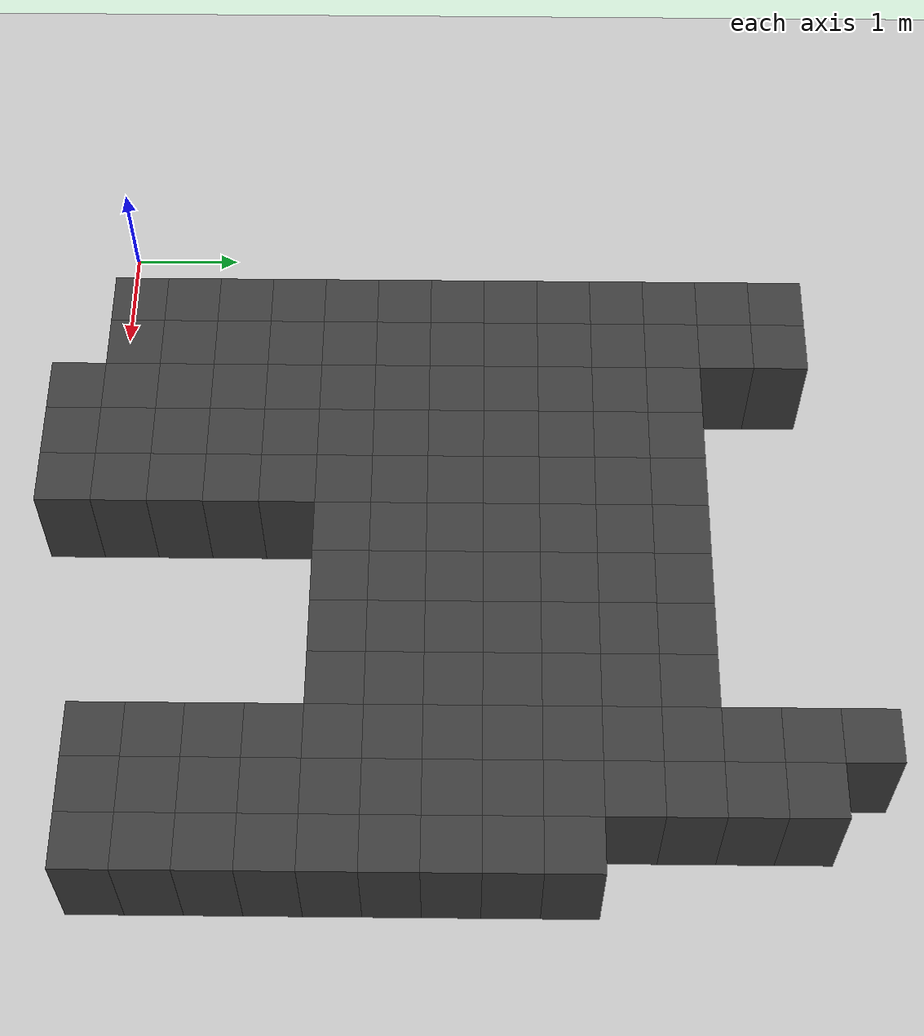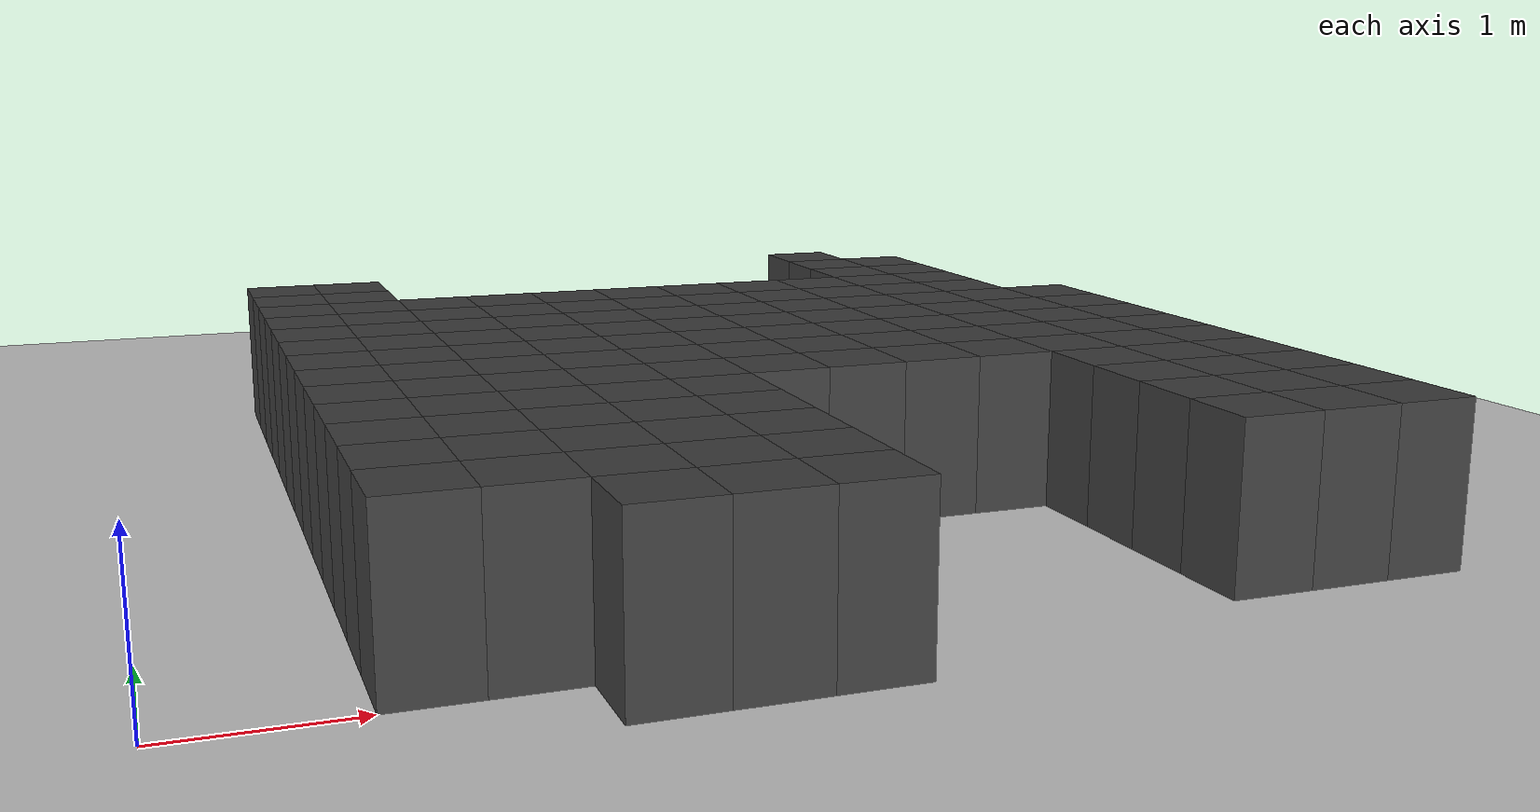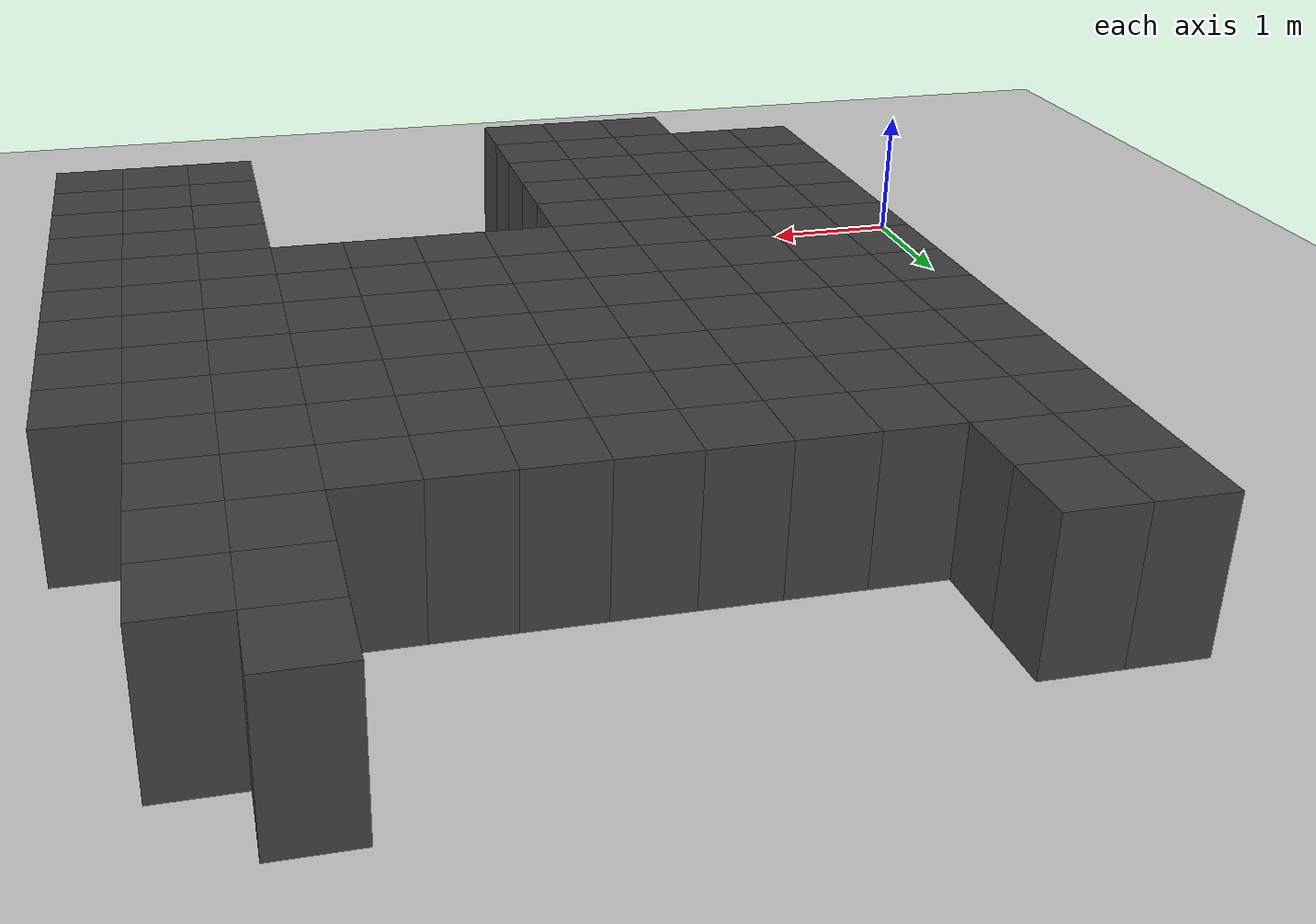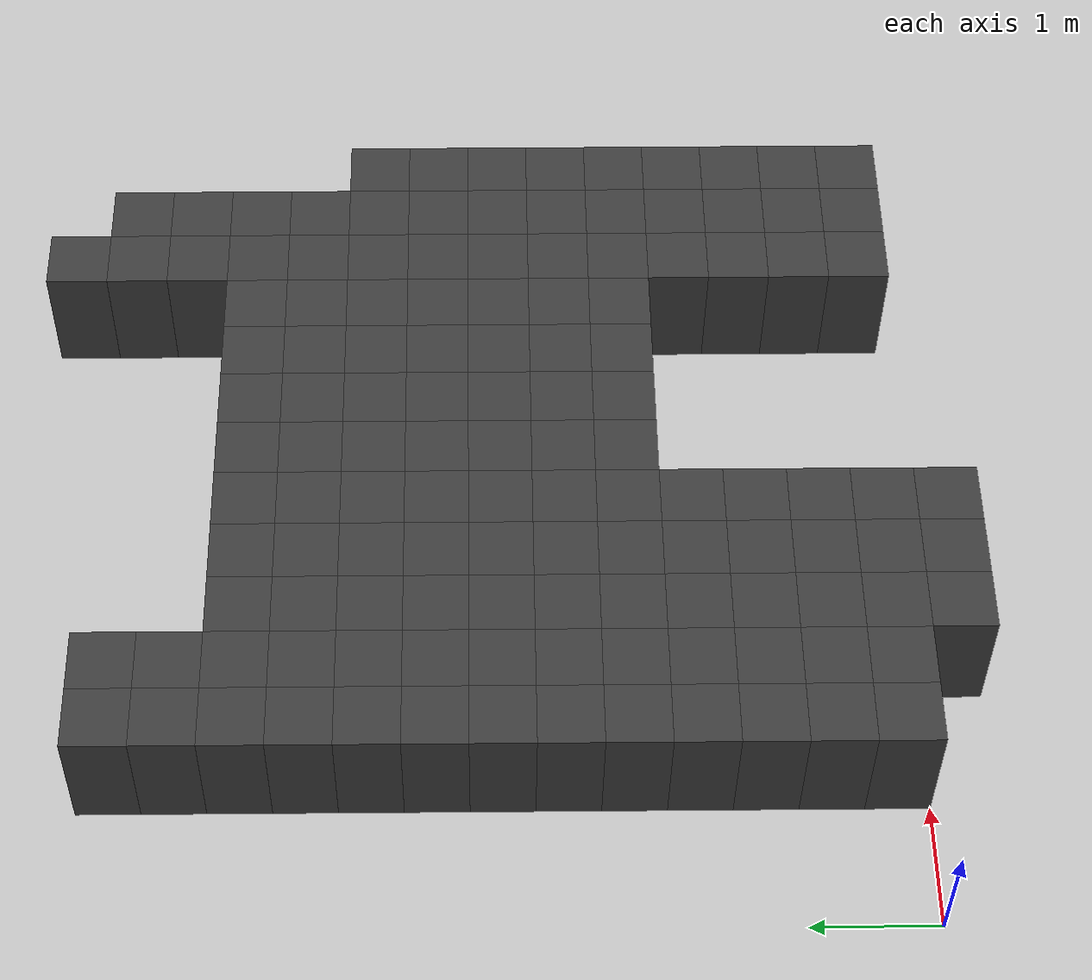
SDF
<sdf version="1.7">
 <world name="map_14495">
  <model name="ground_plane">
   <static>true</static>
   <link name="link">
    <collision name="collision">
     <geometry><plane><normal>0 0 1</normal><size>200 200</size></plane></geometry>
    </collision>
    <visual name="visual">
     <geometry><plane><normal>0 0 1</normal><size>200 200</size></plane></geometry>
     <material><ambient>0.8 0.8 0.8 1</ambient><diffuse>0.8 0.8 0.8 1</diffuse></material>
    </visual>
   </link>
  </model>
  <model name="maze_environment">
   <static>true</static>
   <link name="wall_455">
    <pose>5.750 6.750 0.500 0 0 0</pose>
    <collision name="col"><geometry><box><size>0.5 0.5 1.0</size></box></geometry></collision>
    <visual name="vis">
     <geometry><box><size>0.5 0.5 1.0</size></box></geometry>
     <material><ambient>0.15 0.15 0.15 1</ambient><diffuse>0.25 0.25 0.25 1</diffuse></material>
    </visual>
   </link>
   <link name="wall_483">
    <pose>1.250 6.250 0.500 0 0 0</pose>
    <collision name="col"><geometry><box><size>0.5 0.5 1.0</size></box></geometry></collision>
    <visual name="vis">
     <geometry><box><size>0.5 0.5 1.0</size></box></geometry>
     <material><ambient>0.15 0.15 0.15 1</ambient><diffuse>0.25 0.25 0.25 1</diffuse></material>
    </visual>
   </link>
   <link name="wall_484">
    <pose>1.750 6.250 0.500 0 0 0</pose>
    <collision name="col"><geometry><box><size>0.5 0.5 1.0</size></box></geometry></collision>
    <visual name="vis">
     <geometry><box><size>0.5 0.5 1.0</size></box></geometry>
     <material><ambient>0.15 0.15 0.15 1</ambient><diffuse>0.25 0.25 0.25 1</diffuse></material>
    </visual>
   </link>
   <link name="wall_485">
    <pose>5.750 6.250 0.500 0 0 0</pose>
    <collision name="col"><geometry><box><size>0.5 0.5 1.0</size></box></geometry></collision>
    <visual name="vis">
     <geometry><box><size>0.5 0.5 1.0</size></box></geometry>
     <material><ambient>0.15 0.15 0.15 1</ambient><diffuse>0.25 0.25 0.25 1</diffuse></material>
    </visual>
   </link>
   <link name="wall_486">
    <pose>6.250 6.250 0.500 0 0 0</pose>
    <collision name="col"><geometry><box><size>0.5 0.5 1.0</size></box></geometry></collision>
    <visual name="vis">
     <geometry><box><size>0.5 0.5 1.0</size></box></geometry>
     <material><ambient>0.15 0.15 0.15 1</ambient><diffuse>0.25 0.25 0.25 1</diffuse></material>
    </visual>
   </link>
   <link name="wall_513">
    <pose>1.250 5.750 0.500 0 0 0</pose>
    <collision name="col"><geometry><box><size>0.5 0.5 1.0</size></box></geometry></collision>
    <visual name="vis">
     <geometry><box><size>0.5 0.5 1.0</size></box></geometry>
     <material><ambient>0.15 0.15 0.15 1</ambient><diffuse>0.25 0.25 0.25 1</diffuse></material>
    </visual>
   </link>
   <link name="wall_514">
    <pose>1.750 5.750 0.500 0 0 0</pose>
    <collision name="col"><geometry><box><size>0.5 0.5 1.0</size></box></geometry></collision>
    <visual name="vis">
     <geometry><box><size>0.5 0.5 1.0</size></box></geometry>
     <material><ambient>0.15 0.15 0.15 1</ambient><diffuse>0.25 0.25 0.25 1</diffuse></material>
    </visual>
   </link>
   <link name="wall_515">
    <pose>5.750 5.750 0.500 0 0 0</pose>
    <collision name="col"><geometry><box><size>0.5 0.5 1.0</size></box></geometry></collision>
    <visual name="vis">
     <geometry><box><size>0.5 0.5 1.0</size></box></geometry>
     <material><ambient>0.15 0.15 0.15 1</ambient><diffuse>0.25 0.25 0.25 1</diffuse></material>
    </visual>
   </link>
   <link name="wall_516">
    <pose>6.250 5.750 0.500 0 0 0</pose>
    <collision name="col"><geometry><box><size>0.5 0.5 1.0</size></box></geometry></collision>
    <visual name="vis">
     <geometry><box><size>0.5 0.5 1.0</size></box></geometry>
     <material><ambient>0.15 0.15 0.15 1</ambient><diffuse>0.25 0.25 0.25 1</diffuse></material>
    </visual>
   </link>
   <link name="wall_542">
    <pose>1.250 5.250 0.500 0 0 0</pose>
    <collision name="col"><geometry><box><size>0.5 0.5 1.0</size></box></geometry></collision>
    <visual name="vis">
     <geometry><box><size>0.5 0.5 1.0</size></box></geometry>
     <material><ambient>0.15 0.15 0.15 1</ambient><diffuse>0.25 0.25 0.25 1</diffuse></material>
    </visual>
   </link>
   <link name="wall_543">
    <pose>1.750 5.250 0.500 0 0 0</pose>
    <collision name="col"><geometry><box><size>0.5 0.5 1.0</size></box></geometry></collision>
    <visual name="vis">
     <geometry><box><size>0.5 0.5 1.0</size></box></geometry>
     <material><ambient>0.15 0.15 0.15 1</ambient><diffuse>0.25 0.25 0.25 1</diffuse></material>
    </visual>
   </link>
   <link name="wall_544">
    <pose>2.250 5.250 0.500 0 0 0</pose>
    <collision name="col"><geometry><box><size>0.5 0.5 1.0</size></box></geometry></collision>
    <visual name="vis">
     <geometry><box><size>0.5 0.5 1.0</size></box></geometry>
     <material><ambient>0.15 0.15 0.15 1</ambient><diffuse>0.25 0.25 0.25 1</diffuse></material>
    </visual>
   </link>
   <link name="wall_545">
    <pose>2.750 5.250 0.500 0 0 0</pose>
    <collision name="col"><geometry><box><size>0.5 0.5 1.0</size></box></geometry></collision>
    <visual name="vis">
     <geometry><box><size>0.5 0.5 1.0</size></box></geometry>
     <material><ambient>0.15 0.15 0.15 1</ambient><diffuse>0.25 0.25 0.25 1</diffuse></material>
    </visual>
   </link>
   <link name="wall_546">
    <pose>3.250 5.250 0.500 0 0 0</pose>
    <collision name="col"><geometry><box><size>0.5 0.5 1.0</size></box></geometry></collision>
    <visual name="vis">
     <geometry><box><size>0.5 0.5 1.0</size></box></geometry>
     <material><ambient>0.15 0.15 0.15 1</ambient><diffuse>0.25 0.25 0.25 1</diffuse></material>
    </visual>
   </link>
   <link name="wall_547">
    <pose>3.750 5.250 0.500 0 0 0</pose>
    <collision name="col"><geometry><box><size>0.5 0.5 1.0</size></box></geometry></collision>
    <visual name="vis">
     <geometry><box><size>0.5 0.5 1.0</size></box></geometry>
     <material><ambient>0.15 0.15 0.15 1</ambient><diffuse>0.25 0.25 0.25 1</diffuse></material>
    </visual>
   </link>
   <link name="wall_548">
    <pose>4.250 5.250 0.500 0 0 0</pose>
    <collision name="col"><geometry><box><size>0.5 0.5 1.0</size></box></geometry></collision>
    <visual name="vis">
     <geometry><box><size>0.5 0.5 1.0</size></box></geometry>
     <material><ambient>0.15 0.15 0.15 1</ambient><diffuse>0.25 0.25 0.25 1</diffuse></material>
    </visual>
   </link>
   <link name="wall_549">
    <pose>4.750 5.250 0.500 0 0 0</pose>
    <collision name="col"><geometry><box><size>0.5 0.5 1.0</size></box></geometry></collision>
    <visual name="vis">
     <geometry><box><size>0.5 0.5 1.0</size></box></geometry>
     <material><ambient>0.15 0.15 0.15 1</ambient><diffuse>0.25 0.25 0.25 1</diffuse></material>
    </visual>
   </link>
   <link name="wall_550">
    <pose>5.250 5.250 0.500 0 0 0</pose>
    <collision name="col"><geometry><box><size>0.5 0.5 1.0</size></box></geometry></collision>
    <visual name="vis">
     <geometry><box><size>0.5 0.5 1.0</size></box></geometry>
     <material><ambient>0.15 0.15 0.15 1</ambient><diffuse>0.25 0.25 0.25 1</diffuse></material>
    </visual>
   </link>
   <link name="wall_551">
    <pose>5.750 5.250 0.500 0 0 0</pose>
    <collision name="col"><geometry><box><size>0.5 0.5 1.0</size></box></geometry></collision>
    <visual name="vis">
     <geometry><box><size>0.5 0.5 1.0</size></box></geometry>
     <material><ambient>0.15 0.15 0.15 1</ambient><diffuse>0.25 0.25 0.25 1</diffuse></material>
    </visual>
   </link>
   <link name="wall_552">
    <pose>6.250 5.250 0.500 0 0 0</pose>
    <collision name="col"><geometry><box><size>0.5 0.5 1.0</size></box></geometry></collision>
    <visual name="vis">
     <geometry><box><size>0.5 0.5 1.0</size></box></geometry>
     <material><ambient>0.15 0.15 0.15 1</ambient><diffuse>0.25 0.25 0.25 1</diffuse></material>
    </visual>
   </link>
   <link name="wall_575">
    <pose>1.250 4.750 0.500 0 0 0</pose>
    <collision name="col"><geometry><box><size>0.5 0.5 1.0</size></box></geometry></collision>
    <visual name="vis">
     <geometry><box><size>0.5 0.5 1.0</size></box></geometry>
     <material><ambient>0.15 0.15 0.15 1</ambient><diffuse>0.25 0.25 0.25 1</diffuse></material>
    </visual>
   </link>
   <link name="wall_576">
    <pose>1.750 4.750 0.500 0 0 0</pose>
    <collision name="col"><geometry><box><size>0.5 0.5 1.0</size></box></geometry></collision>
    <visual name="vis">
     <geometry><box><size>0.5 0.5 1.0</size></box></geometry>
     <material><ambient>0.15 0.15 0.15 1</ambient><diffuse>0.25 0.25 0.25 1</diffuse></material>
    </visual>
   </link>
   <link name="wall_577">
    <pose>2.250 4.750 0.500 0 0 0</pose>
    <collision name="col"><geometry><box><size>0.5 0.5 1.0</size></box></geometry></collision>
    <visual name="vis">
     <geometry><box><size>0.5 0.5 1.0</size></box></geometry>
     <material><ambient>0.15 0.15 0.15 1</ambient><diffuse>0.25 0.25 0.25 1</diffuse></material>
    </visual>
   </link>
   <link name="wall_578">
    <pose>2.750 4.750 0.500 0 0 0</pose>
    <collision name="col"><geometry><box><size>0.5 0.5 1.0</size></box></geometry></collision>
    <visual name="vis">
     <geometry><box><size>0.5 0.5 1.0</size></box></geometry>
     <material><ambient>0.15 0.15 0.15 1</ambient><diffuse>0.25 0.25 0.25 1</diffuse></material>
    </visual>
   </link>
   <link name="wall_579">
    <pose>3.250 4.750 0.500 0 0 0</pose>
    <collision name="col"><geometry><box><size>0.5 0.5 1.0</size></box></geometry></collision>
    <visual name="vis">
     <geometry><box><size>0.5 0.5 1.0</size></box></geometry>
     <material><ambient>0.15 0.15 0.15 1</ambient><diffuse>0.25 0.25 0.25 1</diffuse></material>
    </visual>
   </link>
   <link name="wall_580">
    <pose>3.750 4.750 0.500 0 0 0</pose>
    <collision name="col"><geometry><box><size>0.5 0.5 1.0</size></box></geometry></collision>
    <visual name="vis">
     <geometry><box><size>0.5 0.5 1.0</size></box></geometry>
     <material><ambient>0.15 0.15 0.15 1</ambient><diffuse>0.25 0.25 0.25 1</diffuse></material>
    </visual>
   </link>
   <link name="wall_581">
    <pose>4.250 4.750 0.500 0 0 0</pose>
    <collision name="col"><geometry><box><size>0.5 0.5 1.0</size></box></geometry></collision>
    <visual name="vis">
     <geometry><box><size>0.5 0.5 1.0</size></box></geometry>
     <material><ambient>0.15 0.15 0.15 1</ambient><diffuse>0.25 0.25 0.25 1</diffuse></material>
    </visual>
   </link>
   <link name="wall_582">
    <pose>4.750 4.750 0.500 0 0 0</pose>
    <collision name="col"><geometry><box><size>0.5 0.5 1.0</size></box></geometry></collision>
    <visual name="vis">
     <geometry><box><size>0.5 0.5 1.0</size></box></geometry>
     <material><ambient>0.15 0.15 0.15 1</ambient><diffuse>0.25 0.25 0.25 1</diffuse></material>
    </visual>
   </link>
   <link name="wall_583">
    <pose>5.250 4.750 0.500 0 0 0</pose>
    <collision name="col"><geometry><box><size>0.5 0.5 1.0</size></box></geometry></collision>
    <visual name="vis">
     <geometry><box><size>0.5 0.5 1.0</size></box></geometry>
     <material><ambient>0.15 0.15 0.15 1</ambient><diffuse>0.25 0.25 0.25 1</diffuse></material>
    </visual>
   </link>
   <link name="wall_584">
    <pose>5.750 4.750 0.500 0 0 0</pose>
    <collision name="col"><geometry><box><size>0.5 0.5 1.0</size></box></geometry></collision>
    <visual name="vis">
     <geometry><box><size>0.5 0.5 1.0</size></box></geometry>
     <material><ambient>0.15 0.15 0.15 1</ambient><diffuse>0.25 0.25 0.25 1</diffuse></material>
    </visual>
   </link>
   <link name="wall_585">
    <pose>6.250 4.750 0.500 0 0 0</pose>
    <collision name="col"><geometry><box><size>0.5 0.5 1.0</size></box></geometry></collision>
    <visual name="vis">
     <geometry><box><size>0.5 0.5 1.0</size></box></geometry>
     <material><ambient>0.15 0.15 0.15 1</ambient><diffuse>0.25 0.25 0.25 1</diffuse></material>
    </visual>
   </link>
   <link name="wall_611">
    <pose>1.250 4.250 0.500 0 0 0</pose>
    <collision name="col"><geometry><box><size>0.5 0.5 1.0</size></box></geometry></collision>
    <visual name="vis">
     <geometry><box><size>0.5 0.5 1.0</size></box></geometry>
     <material><ambient>0.15 0.15 0.15 1</ambient><diffuse>0.25 0.25 0.25 1</diffuse></material>
    </visual>
   </link>
   <link name="wall_612">
    <pose>1.750 4.250 0.500 0 0 0</pose>
    <collision name="col"><geometry><box><size>0.5 0.5 1.0</size></box></geometry></collision>
    <visual name="vis">
     <geometry><box><size>0.5 0.5 1.0</size></box></geometry>
     <material><ambient>0.15 0.15 0.15 1</ambient><diffuse>0.25 0.25 0.25 1</diffuse></material>
    </visual>
   </link>
   <link name="wall_613">
    <pose>2.250 4.250 0.500 0 0 0</pose>
    <collision name="col"><geometry><box><size>0.5 0.5 1.0</size></box></geometry></collision>
    <visual name="vis">
     <geometry><box><size>0.5 0.5 1.0</size></box></geometry>
     <material><ambient>0.15 0.15 0.15 1</ambient><diffuse>0.25 0.25 0.25 1</diffuse></material>
    </visual>
   </link>
   <link name="wall_614">
    <pose>2.750 4.250 0.500 0 0 0</pose>
    <collision name="col"><geometry><box><size>0.5 0.5 1.0</size></box></geometry></collision>
    <visual name="vis">
     <geometry><box><size>0.5 0.5 1.0</size></box></geometry>
     <material><ambient>0.15 0.15 0.15 1</ambient><diffuse>0.25 0.25 0.25 1</diffuse></material>
    </visual>
   </link>
   <link name="wall_615">
    <pose>3.250 4.250 0.500 0 0 0</pose>
    <collision name="col"><geometry><box><size>0.5 0.5 1.0</size></box></geometry></collision>
    <visual name="vis">
     <geometry><box><size>0.5 0.5 1.0</size></box></geometry>
     <material><ambient>0.15 0.15 0.15 1</ambient><diffuse>0.25 0.25 0.25 1</diffuse></material>
    </visual>
   </link>
   <link name="wall_616">
    <pose>3.750 4.250 0.500 0 0 0</pose>
    <collision name="col"><geometry><box><size>0.5 0.5 1.0</size></box></geometry></collision>
    <visual name="vis">
     <geometry><box><size>0.5 0.5 1.0</size></box></geometry>
     <material><ambient>0.15 0.15 0.15 1</ambient><diffuse>0.25 0.25 0.25 1</diffuse></material>
    </visual>
   </link>
   <link name="wall_617">
    <pose>4.250 4.250 0.500 0 0 0</pose>
    <collision name="col"><geometry><box><size>0.5 0.5 1.0</size></box></geometry></collision>
    <visual name="vis">
     <geometry><box><size>0.5 0.5 1.0</size></box></geometry>
     <material><ambient>0.15 0.15 0.15 1</ambient><diffuse>0.25 0.25 0.25 1</diffuse></material>
    </visual>
   </link>
   <link name="wall_618">
    <pose>4.750 4.250 0.500 0 0 0</pose>
    <collision name="col"><geometry><box><size>0.5 0.5 1.0</size></box></geometry></collision>
    <visual name="vis">
     <geometry><box><size>0.5 0.5 1.0</size></box></geometry>
     <material><ambient>0.15 0.15 0.15 1</ambient><diffuse>0.25 0.25 0.25 1</diffuse></material>
    </visual>
   </link>
   <link name="wall_619">
    <pose>5.250 4.250 0.500 0 0 0</pose>
    <collision name="col"><geometry><box><size>0.5 0.5 1.0</size></box></geometry></collision>
    <visual name="vis">
     <geometry><box><size>0.5 0.5 1.0</size></box></geometry>
     <material><ambient>0.15 0.15 0.15 1</ambient><diffuse>0.25 0.25 0.25 1</diffuse></material>
    </visual>
   </link>
   <link name="wall_620">
    <pose>5.750 4.250 0.500 0 0 0</pose>
    <collision name="col"><geometry><box><size>0.5 0.5 1.0</size></box></geometry></collision>
    <visual name="vis">
     <geometry><box><size>0.5 0.5 1.0</size></box></geometry>
     <material><ambient>0.15 0.15 0.15 1</ambient><diffuse>0.25 0.25 0.25 1</diffuse></material>
    </visual>
   </link>
   <link name="wall_621">
    <pose>6.250 4.250 0.500 0 0 0</pose>
    <collision name="col"><geometry><box><size>0.5 0.5 1.0</size></box></geometry></collision>
    <visual name="vis">
     <geometry><box><size>0.5 0.5 1.0</size></box></geometry>
     <material><ambient>0.15 0.15 0.15 1</ambient><diffuse>0.25 0.25 0.25 1</diffuse></material>
    </visual>
   </link>
   <link name="wall_622">
    <pose>6.750 4.250 0.500 0 0 0</pose>
    <collision name="col"><geometry><box><size>0.5 0.5 1.0</size></box></geometry></collision>
    <visual name="vis">
     <geometry><box><size>0.5 0.5 1.0</size></box></geometry>
     <material><ambient>0.15 0.15 0.15 1</ambient><diffuse>0.25 0.25 0.25 1</diffuse></material>
    </visual>
   </link>
   <link name="wall_648">
    <pose>1.250 3.750 0.500 0 0 0</pose>
    <collision name="col"><geometry><box><size>0.5 0.5 1.0</size></box></geometry></collision>
    <visual name="vis">
     <geometry><box><size>0.5 0.5 1.0</size></box></geometry>
     <material><ambient>0.15 0.15 0.15 1</ambient><diffuse>0.25 0.25 0.25 1</diffuse></material>
    </visual>
   </link>
   <link name="wall_649">
    <pose>1.750 3.750 0.500 0 0 0</pose>
    <collision name="col"><geometry><box><size>0.5 0.5 1.0</size></box></geometry></collision>
    <visual name="vis">
     <geometry><box><size>0.5 0.5 1.0</size></box></geometry>
     <material><ambient>0.15 0.15 0.15 1</ambient><diffuse>0.25 0.25 0.25 1</diffuse></material>
    </visual>
   </link>
   <link name="wall_650">
    <pose>2.250 3.750 0.500 0 0 0</pose>
    <collision name="col"><geometry><box><size>0.5 0.5 1.0</size></box></geometry></collision>
    <visual name="vis">
     <geometry><box><size>0.5 0.5 1.0</size></box></geometry>
     <material><ambient>0.15 0.15 0.15 1</ambient><diffuse>0.25 0.25 0.25 1</diffuse></material>
    </visual>
   </link>
   <link name="wall_651">
    <pose>2.750 3.750 0.500 0 0 0</pose>
    <collision name="col"><geometry><box><size>0.5 0.5 1.0</size></box></geometry></collision>
    <visual name="vis">
     <geometry><box><size>0.5 0.5 1.0</size></box></geometry>
     <material><ambient>0.15 0.15 0.15 1</ambient><diffuse>0.25 0.25 0.25 1</diffuse></material>
    </visual>
   </link>
   <link name="wall_652">
    <pose>3.250 3.750 0.500 0 0 0</pose>
    <collision name="col"><geometry><box><size>0.5 0.5 1.0</size></box></geometry></collision>
    <visual name="vis">
     <geometry><box><size>0.5 0.5 1.0</size></box></geometry>
     <material><ambient>0.15 0.15 0.15 1</ambient><diffuse>0.25 0.25 0.25 1</diffuse></material>
    </visual>
   </link>
   <link name="wall_653">
    <pose>3.750 3.750 0.500 0 0 0</pose>
    <collision name="col"><geometry><box><size>0.5 0.5 1.0</size></box></geometry></collision>
    <visual name="vis">
     <geometry><box><size>0.5 0.5 1.0</size></box></geometry>
     <material><ambient>0.15 0.15 0.15 1</ambient><diffuse>0.25 0.25 0.25 1</diffuse></material>
    </visual>
   </link>
   <link name="wall_654">
    <pose>4.250 3.750 0.500 0 0 0</pose>
    <collision name="col"><geometry><box><size>0.5 0.5 1.0</size></box></geometry></collision>
    <visual name="vis">
     <geometry><box><size>0.5 0.5 1.0</size></box></geometry>
     <material><ambient>0.15 0.15 0.15 1</ambient><diffuse>0.25 0.25 0.25 1</diffuse></material>
    </visual>
   </link>
   <link name="wall_655">
    <pose>4.750 3.750 0.500 0 0 0</pose>
    <collision name="col"><geometry><box><size>0.5 0.5 1.0</size></box></geometry></collision>
    <visual name="vis">
     <geometry><box><size>0.5 0.5 1.0</size></box></geometry>
     <material><ambient>0.15 0.15 0.15 1</ambient><diffuse>0.25 0.25 0.25 1</diffuse></material>
    </visual>
   </link>
   <link name="wall_656">
    <pose>5.250 3.750 0.500 0 0 0</pose>
    <collision name="col"><geometry><box><size>0.5 0.5 1.0</size></box></geometry></collision>
    <visual name="vis">
     <geometry><box><size>0.5 0.5 1.0</size></box></geometry>
     <material><ambient>0.15 0.15 0.15 1</ambient><diffuse>0.25 0.25 0.25 1</diffuse></material>
    </visual>
   </link>
   <link name="wall_657">
    <pose>5.750 3.750 0.500 0 0 0</pose>
    <collision name="col"><geometry><box><size>0.5 0.5 1.0</size></box></geometry></collision>
    <visual name="vis">
     <geometry><box><size>0.5 0.5 1.0</size></box></geometry>
     <material><ambient>0.15 0.15 0.15 1</ambient><diffuse>0.25 0.25 0.25 1</diffuse></material>
    </visual>
   </link>
   <link name="wall_658">
    <pose>6.250 3.750 0.500 0 0 0</pose>
    <collision name="col"><geometry><box><size>0.5 0.5 1.0</size></box></geometry></collision>
    <visual name="vis">
     <geometry><box><size>0.5 0.5 1.0</size></box></geometry>
     <material><ambient>0.15 0.15 0.15 1</ambient><diffuse>0.25 0.25 0.25 1</diffuse></material>
    </visual>
   </link>
   <link name="wall_659">
    <pose>6.750 3.750 0.500 0 0 0</pose>
    <collision name="col"><geometry><box><size>0.5 0.5 1.0</size></box></geometry></collision>
    <visual name="vis">
     <geometry><box><size>0.5 0.5 1.0</size></box></geometry>
     <material><ambient>0.15 0.15 0.15 1</ambient><diffuse>0.25 0.25 0.25 1</diffuse></material>
    </visual>
   </link>
   <link name="wall_687">
    <pose>1.250 3.250 0.500 0 0 0</pose>
    <collision name="col"><geometry><box><size>0.5 0.5 1.0</size></box></geometry></collision>
    <visual name="vis">
     <geometry><box><size>0.5 0.5 1.0</size></box></geometry>
     <material><ambient>0.15 0.15 0.15 1</ambient><diffuse>0.25 0.25 0.25 1</diffuse></material>
    </visual>
   </link>
   <link name="wall_688">
    <pose>1.750 3.250 0.500 0 0 0</pose>
    <collision name="col"><geometry><box><size>0.5 0.5 1.0</size></box></geometry></collision>
    <visual name="vis">
     <geometry><box><size>0.5 0.5 1.0</size></box></geometry>
     <material><ambient>0.15 0.15 0.15 1</ambient><diffuse>0.25 0.25 0.25 1</diffuse></material>
    </visual>
   </link>
   <link name="wall_689">
    <pose>2.250 3.250 0.500 0 0 0</pose>
    <collision name="col"><geometry><box><size>0.5 0.5 1.0</size></box></geometry></collision>
    <visual name="vis">
     <geometry><box><size>0.5 0.5 1.0</size></box></geometry>
     <material><ambient>0.15 0.15 0.15 1</ambient><diffuse>0.25 0.25 0.25 1</diffuse></material>
    </visual>
   </link>
   <link name="wall_690">
    <pose>2.750 3.250 0.500 0 0 0</pose>
    <collision name="col"><geometry><box><size>0.5 0.5 1.0</size></box></geometry></collision>
    <visual name="vis">
     <geometry><box><size>0.5 0.5 1.0</size></box></geometry>
     <material><ambient>0.15 0.15 0.15 1</ambient><diffuse>0.25 0.25 0.25 1</diffuse></material>
    </visual>
   </link>
   <link name="wall_691">
    <pose>3.250 3.250 0.500 0 0 0</pose>
    <collision name="col"><geometry><box><size>0.5 0.5 1.0</size></box></geometry></collision>
    <visual name="vis">
     <geometry><box><size>0.5 0.5 1.0</size></box></geometry>
     <material><ambient>0.15 0.15 0.15 1</ambient><diffuse>0.25 0.25 0.25 1</diffuse></material>
    </visual>
   </link>
   <link name="wall_692">
    <pose>3.750 3.250 0.500 0 0 0</pose>
    <collision name="col"><geometry><box><size>0.5 0.5 1.0</size></box></geometry></collision>
    <visual name="vis">
     <geometry><box><size>0.5 0.5 1.0</size></box></geometry>
     <material><ambient>0.15 0.15 0.15 1</ambient><diffuse>0.25 0.25 0.25 1</diffuse></material>
    </visual>
   </link>
   <link name="wall_693">
    <pose>4.250 3.250 0.500 0 0 0</pose>
    <collision name="col"><geometry><box><size>0.5 0.5 1.0</size></box></geometry></collision>
    <visual name="vis">
     <geometry><box><size>0.5 0.5 1.0</size></box></geometry>
     <material><ambient>0.15 0.15 0.15 1</ambient><diffuse>0.25 0.25 0.25 1</diffuse></material>
    </visual>
   </link>
   <link name="wall_694">
    <pose>4.750 3.250 0.500 0 0 0</pose>
    <collision name="col"><geometry><box><size>0.5 0.5 1.0</size></box></geometry></collision>
    <visual name="vis">
     <geometry><box><size>0.5 0.5 1.0</size></box></geometry>
     <material><ambient>0.15 0.15 0.15 1</ambient><diffuse>0.25 0.25 0.25 1</diffuse></material>
    </visual>
   </link>
   <link name="wall_695">
    <pose>5.250 3.250 0.500 0 0 0</pose>
    <collision name="col"><geometry><box><size>0.5 0.5 1.0</size></box></geometry></collision>
    <visual name="vis">
     <geometry><box><size>0.5 0.5 1.0</size></box></geometry>
     <material><ambient>0.15 0.15 0.15 1</ambient><diffuse>0.25 0.25 0.25 1</diffuse></material>
    </visual>
   </link>
   <link name="wall_696">
    <pose>5.750 3.250 0.500 0 0 0</pose>
    <collision name="col"><geometry><box><size>0.5 0.5 1.0</size></box></geometry></collision>
    <visual name="vis">
     <geometry><box><size>0.5 0.5 1.0</size></box></geometry>
     <material><ambient>0.15 0.15 0.15 1</ambient><diffuse>0.25 0.25 0.25 1</diffuse></material>
    </visual>
   </link>
   <link name="wall_697">
    <pose>6.250 3.250 0.500 0 0 0</pose>
    <collision name="col"><geometry><box><size>0.5 0.5 1.0</size></box></geometry></collision>
    <visual name="vis">
     <geometry><box><size>0.5 0.5 1.0</size></box></geometry>
     <material><ambient>0.15 0.15 0.15 1</ambient><diffuse>0.25 0.25 0.25 1</diffuse></material>
    </visual>
   </link>
   <link name="wall_698">
    <pose>6.750 3.250 0.500 0 0 0</pose>
    <collision name="col"><geometry><box><size>0.5 0.5 1.0</size></box></geometry></collision>
    <visual name="vis">
     <geometry><box><size>0.5 0.5 1.0</size></box></geometry>
     <material><ambient>0.15 0.15 0.15 1</ambient><diffuse>0.25 0.25 0.25 1</diffuse></material>
    </visual>
   </link>
   <link name="wall_731">
    <pose>1.250 2.750 0.500 0 0 0</pose>
    <collision name="col"><geometry><box><size>0.5 0.5 1.0</size></box></geometry></collision>
    <visual name="vis">
     <geometry><box><size>0.5 0.5 1.0</size></box></geometry>
     <material><ambient>0.15 0.15 0.15 1</ambient><diffuse>0.25 0.25 0.25 1</diffuse></material>
    </visual>
   </link>
   <link name="wall_732">
    <pose>1.750 2.750 0.500 0 0 0</pose>
    <collision name="col"><geometry><box><size>0.5 0.5 1.0</size></box></geometry></collision>
    <visual name="vis">
     <geometry><box><size>0.5 0.5 1.0</size></box></geometry>
     <material><ambient>0.15 0.15 0.15 1</ambient><diffuse>0.25 0.25 0.25 1</diffuse></material>
    </visual>
   </link>
   <link name="wall_733">
    <pose>2.250 2.750 0.500 0 0 0</pose>
    <collision name="col"><geometry><box><size>0.5 0.5 1.0</size></box></geometry></collision>
    <visual name="vis">
     <geometry><box><size>0.5 0.5 1.0</size></box></geometry>
     <material><ambient>0.15 0.15 0.15 1</ambient><diffuse>0.25 0.25 0.25 1</diffuse></material>
    </visual>
   </link>
   <link name="wall_734">
    <pose>2.750 2.750 0.500 0 0 0</pose>
    <collision name="col"><geometry><box><size>0.5 0.5 1.0</size></box></geometry></collision>
    <visual name="vis">
     <geometry><box><size>0.5 0.5 1.0</size></box></geometry>
     <material><ambient>0.15 0.15 0.15 1</ambient><diffuse>0.25 0.25 0.25 1</diffuse></material>
    </visual>
   </link>
   <link name="wall_735">
    <pose>3.250 2.750 0.500 0 0 0</pose>
    <collision name="col"><geometry><box><size>0.5 0.5 1.0</size></box></geometry></collision>
    <visual name="vis">
     <geometry><box><size>0.5 0.5 1.0</size></box></geometry>
     <material><ambient>0.15 0.15 0.15 1</ambient><diffuse>0.25 0.25 0.25 1</diffuse></material>
    </visual>
   </link>
   <link name="wall_736">
    <pose>3.750 2.750 0.500 0 0 0</pose>
    <collision name="col"><geometry><box><size>0.5 0.5 1.0</size></box></geometry></collision>
    <visual name="vis">
     <geometry><box><size>0.5 0.5 1.0</size></box></geometry>
     <material><ambient>0.15 0.15 0.15 1</ambient><diffuse>0.25 0.25 0.25 1</diffuse></material>
    </visual>
   </link>
   <link name="wall_737">
    <pose>4.250 2.750 0.500 0 0 0</pose>
    <collision name="col"><geometry><box><size>0.5 0.5 1.0</size></box></geometry></collision>
    <visual name="vis">
     <geometry><box><size>0.5 0.5 1.0</size></box></geometry>
     <material><ambient>0.15 0.15 0.15 1</ambient><diffuse>0.25 0.25 0.25 1</diffuse></material>
    </visual>
   </link>
   <link name="wall_738">
    <pose>4.750 2.750 0.500 0 0 0</pose>
    <collision name="col"><geometry><box><size>0.5 0.5 1.0</size></box></geometry></collision>
    <visual name="vis">
     <geometry><box><size>0.5 0.5 1.0</size></box></geometry>
     <material><ambient>0.15 0.15 0.15 1</ambient><diffuse>0.25 0.25 0.25 1</diffuse></material>
    </visual>
   </link>
   <link name="wall_739">
    <pose>5.250 2.750 0.500 0 0 0</pose>
    <collision name="col"><geometry><box><size>0.5 0.5 1.0</size></box></geometry></collision>
    <visual name="vis">
     <geometry><box><size>0.5 0.5 1.0</size></box></geometry>
     <material><ambient>0.15 0.15 0.15 1</ambient><diffuse>0.25 0.25 0.25 1</diffuse></material>
    </visual>
   </link>
   <link name="wall_740">
    <pose>5.750 2.750 0.500 0 0 0</pose>
    <collision name="col"><geometry><box><size>0.5 0.5 1.0</size></box></geometry></collision>
    <visual name="vis">
     <geometry><box><size>0.5 0.5 1.0</size></box></geometry>
     <material><ambient>0.15 0.15 0.15 1</ambient><diffuse>0.25 0.25 0.25 1</diffuse></material>
    </visual>
   </link>
   <link name="wall_741">
    <pose>6.250 2.750 0.500 0 0 0</pose>
    <collision name="col"><geometry><box><size>0.5 0.5 1.0</size></box></geometry></collision>
    <visual name="vis">
     <geometry><box><size>0.5 0.5 1.0</size></box></geometry>
     <material><ambient>0.15 0.15 0.15 1</ambient><diffuse>0.25 0.25 0.25 1</diffuse></material>
    </visual>
   </link>
   <link name="wall_742">
    <pose>6.750 2.750 0.500 0 0 0</pose>
    <collision name="col"><geometry><box><size>0.5 0.5 1.0</size></box></geometry></collision>
    <visual name="vis">
     <geometry><box><size>0.5 0.5 1.0</size></box></geometry>
     <material><ambient>0.15 0.15 0.15 1</ambient><diffuse>0.25 0.25 0.25 1</diffuse></material>
    </visual>
   </link>
   <link name="wall_775">
    <pose>1.250 2.250 0.500 0 0 0</pose>
    <collision name="col"><geometry><box><size>0.5 0.5 1.0</size></box></geometry></collision>
    <visual name="vis">
     <geometry><box><size>0.5 0.5 1.0</size></box></geometry>
     <material><ambient>0.15 0.15 0.15 1</ambient><diffuse>0.25 0.25 0.25 1</diffuse></material>
    </visual>
   </link>
   <link name="wall_776">
    <pose>1.750 2.250 0.500 0 0 0</pose>
    <collision name="col"><geometry><box><size>0.5 0.5 1.0</size></box></geometry></collision>
    <visual name="vis">
     <geometry><box><size>0.5 0.5 1.0</size></box></geometry>
     <material><ambient>0.15 0.15 0.15 1</ambient><diffuse>0.25 0.25 0.25 1</diffuse></material>
    </visual>
   </link>
   <link name="wall_777">
    <pose>2.250 2.250 0.500 0 0 0</pose>
    <collision name="col"><geometry><box><size>0.5 0.5 1.0</size></box></geometry></collision>
    <visual name="vis">
     <geometry><box><size>0.5 0.5 1.0</size></box></geometry>
     <material><ambient>0.15 0.15 0.15 1</ambient><diffuse>0.25 0.25 0.25 1</diffuse></material>
    </visual>
   </link>
   <link name="wall_778">
    <pose>2.750 2.250 0.500 0 0 0</pose>
    <collision name="col"><geometry><box><size>0.5 0.5 1.0</size></box></geometry></collision>
    <visual name="vis">
     <geometry><box><size>0.5 0.5 1.0</size></box></geometry>
     <material><ambient>0.15 0.15 0.15 1</ambient><diffuse>0.25 0.25 0.25 1</diffuse></material>
    </visual>
   </link>
   <link name="wall_779">
    <pose>3.250 2.250 0.500 0 0 0</pose>
    <collision name="col"><geometry><box><size>0.5 0.5 1.0</size></box></geometry></collision>
    <visual name="vis">
     <geometry><box><size>0.5 0.5 1.0</size></box></geometry>
     <material><ambient>0.15 0.15 0.15 1</ambient><diffuse>0.25 0.25 0.25 1</diffuse></material>
    </visual>
   </link>
   <link name="wall_780">
    <pose>3.750 2.250 0.500 0 0 0</pose>
    <collision name="col"><geometry><box><size>0.5 0.5 1.0</size></box></geometry></collision>
    <visual name="vis">
     <geometry><box><size>0.5 0.5 1.0</size></box></geometry>
     <material><ambient>0.15 0.15 0.15 1</ambient><diffuse>0.25 0.25 0.25 1</diffuse></material>
    </visual>
   </link>
   <link name="wall_781">
    <pose>4.250 2.250 0.500 0 0 0</pose>
    <collision name="col"><geometry><box><size>0.5 0.5 1.0</size></box></geometry></collision>
    <visual name="vis">
     <geometry><box><size>0.5 0.5 1.0</size></box></geometry>
     <material><ambient>0.15 0.15 0.15 1</ambient><diffuse>0.25 0.25 0.25 1</diffuse></material>
    </visual>
   </link>
   <link name="wall_782">
    <pose>4.750 2.250 0.500 0 0 0</pose>
    <collision name="col"><geometry><box><size>0.5 0.5 1.0</size></box></geometry></collision>
    <visual name="vis">
     <geometry><box><size>0.5 0.5 1.0</size></box></geometry>
     <material><ambient>0.15 0.15 0.15 1</ambient><diffuse>0.25 0.25 0.25 1</diffuse></material>
    </visual>
   </link>
   <link name="wall_783">
    <pose>5.250 2.250 0.500 0 0 0</pose>
    <collision name="col"><geometry><box><size>0.5 0.5 1.0</size></box></geometry></collision>
    <visual name="vis">
     <geometry><box><size>0.5 0.5 1.0</size></box></geometry>
     <material><ambient>0.15 0.15 0.15 1</ambient><diffuse>0.25 0.25 0.25 1</diffuse></material>
    </visual>
   </link>
   <link name="wall_784">
    <pose>5.750 2.250 0.500 0 0 0</pose>
    <collision name="col"><geometry><box><size>0.5 0.5 1.0</size></box></geometry></collision>
    <visual name="vis">
     <geometry><box><size>0.5 0.5 1.0</size></box></geometry>
     <material><ambient>0.15 0.15 0.15 1</ambient><diffuse>0.25 0.25 0.25 1</diffuse></material>
    </visual>
   </link>
   <link name="wall_785">
    <pose>6.250 2.250 0.500 0 0 0</pose>
    <collision name="col"><geometry><box><size>0.5 0.5 1.0</size></box></geometry></collision>
    <visual name="vis">
     <geometry><box><size>0.5 0.5 1.0</size></box></geometry>
     <material><ambient>0.15 0.15 0.15 1</ambient><diffuse>0.25 0.25 0.25 1</diffuse></material>
    </visual>
   </link>
   <link name="wall_786">
    <pose>6.750 2.250 0.500 0 0 0</pose>
    <collision name="col"><geometry><box><size>0.5 0.5 1.0</size></box></geometry></collision>
    <visual name="vis">
     <geometry><box><size>0.5 0.5 1.0</size></box></geometry>
     <material><ambient>0.15 0.15 0.15 1</ambient><diffuse>0.25 0.25 0.25 1</diffuse></material>
    </visual>
   </link>
   <link name="wall_819">
    <pose>1.250 1.750 0.500 0 0 0</pose>
    <collision name="col"><geometry><box><size>0.5 0.5 1.0</size></box></geometry></collision>
    <visual name="vis">
     <geometry><box><size>0.5 0.5 1.0</size></box></geometry>
     <material><ambient>0.15 0.15 0.15 1</ambient><diffuse>0.25 0.25 0.25 1</diffuse></material>
    </visual>
   </link>
   <link name="wall_820">
    <pose>1.750 1.750 0.500 0 0 0</pose>
    <collision name="col"><geometry><box><size>0.5 0.5 1.0</size></box></geometry></collision>
    <visual name="vis">
     <geometry><box><size>0.5 0.5 1.0</size></box></geometry>
     <material><ambient>0.15 0.15 0.15 1</ambient><diffuse>0.25 0.25 0.25 1</diffuse></material>
    </visual>
   </link>
   <link name="wall_821">
    <pose>2.250 1.750 0.500 0 0 0</pose>
    <collision name="col"><geometry><box><size>0.5 0.5 1.0</size></box></geometry></collision>
    <visual name="vis">
     <geometry><box><size>0.5 0.5 1.0</size></box></geometry>
     <material><ambient>0.15 0.15 0.15 1</ambient><diffuse>0.25 0.25 0.25 1</diffuse></material>
    </visual>
   </link>
   <link name="wall_822">
    <pose>2.750 1.750 0.500 0 0 0</pose>
    <collision name="col"><geometry><box><size>0.5 0.5 1.0</size></box></geometry></collision>
    <visual name="vis">
     <geometry><box><size>0.5 0.5 1.0</size></box></geometry>
     <material><ambient>0.15 0.15 0.15 1</ambient><diffuse>0.25 0.25 0.25 1</diffuse></material>
    </visual>
   </link>
   <link name="wall_823">
    <pose>3.250 1.750 0.500 0 0 0</pose>
    <collision name="col"><geometry><box><size>0.5 0.5 1.0</size></box></geometry></collision>
    <visual name="vis">
     <geometry><box><size>0.5 0.5 1.0</size></box></geometry>
     <material><ambient>0.15 0.15 0.15 1</ambient><diffuse>0.25 0.25 0.25 1</diffuse></material>
    </visual>
   </link>
   <link name="wall_824">
    <pose>5.750 1.750 0.500 0 0 0</pose>
    <collision name="col"><geometry><box><size>0.5 0.5 1.0</size></box></geometry></collision>
    <visual name="vis">
     <geometry><box><size>0.5 0.5 1.0</size></box></geometry>
     <material><ambient>0.15 0.15 0.15 1</ambient><diffuse>0.25 0.25 0.25 1</diffuse></material>
    </visual>
   </link>
   <link name="wall_825">
    <pose>6.250 1.750 0.500 0 0 0</pose>
    <collision name="col"><geometry><box><size>0.5 0.5 1.0</size></box></geometry></collision>
    <visual name="vis">
     <geometry><box><size>0.5 0.5 1.0</size></box></geometry>
     <material><ambient>0.15 0.15 0.15 1</ambient><diffuse>0.25 0.25 0.25 1</diffuse></material>
    </visual>
   </link>
   <link name="wall_826">
    <pose>6.750 1.750 0.500 0 0 0</pose>
    <collision name="col"><geometry><box><size>0.5 0.5 1.0</size></box></geometry></collision>
    <visual name="vis">
     <geometry><box><size>0.5 0.5 1.0</size></box></geometry>
     <material><ambient>0.15 0.15 0.15 1</ambient><diffuse>0.25 0.25 0.25 1</diffuse></material>
    </visual>
   </link>
   <link name="wall_853">
    <pose>1.250 1.250 0.500 0 0 0</pose>
    <collision name="col"><geometry><box><size>0.5 0.5 1.0</size></box></geometry></collision>
    <visual name="vis">
     <geometry><box><size>0.5 0.5 1.0</size></box></geometry>
     <material><ambient>0.15 0.15 0.15 1</ambient><diffuse>0.25 0.25 0.25 1</diffuse></material>
    </visual>
   </link>
   <link name="wall_854">
    <pose>1.750 1.250 0.500 0 0 0</pose>
    <collision name="col"><geometry><box><size>0.5 0.5 1.0</size></box></geometry></collision>
    <visual name="vis">
     <geometry><box><size>0.5 0.5 1.0</size></box></geometry>
     <material><ambient>0.15 0.15 0.15 1</ambient><diffuse>0.25 0.25 0.25 1</diffuse></material>
    </visual>
   </link>
   <link name="wall_855">
    <pose>2.250 1.250 0.500 0 0 0</pose>
    <collision name="col"><geometry><box><size>0.5 0.5 1.0</size></box></geometry></collision>
    <visual name="vis">
     <geometry><box><size>0.5 0.5 1.0</size></box></geometry>
     <material><ambient>0.15 0.15 0.15 1</ambient><diffuse>0.25 0.25 0.25 1</diffuse></material>
    </visual>
   </link>
   <link name="wall_856">
    <pose>2.750 1.250 0.500 0 0 0</pose>
    <collision name="col"><geometry><box><size>0.5 0.5 1.0</size></box></geometry></collision>
    <visual name="vis">
     <geometry><box><size>0.5 0.5 1.0</size></box></geometry>
     <material><ambient>0.15 0.15 0.15 1</ambient><diffuse>0.25 0.25 0.25 1</diffuse></material>
    </visual>
   </link>
   <link name="wall_857">
    <pose>3.250 1.250 0.500 0 0 0</pose>
    <collision name="col"><geometry><box><size>0.5 0.5 1.0</size></box></geometry></collision>
    <visual name="vis">
     <geometry><box><size>0.5 0.5 1.0</size></box></geometry>
     <material><ambient>0.15 0.15 0.15 1</ambient><diffuse>0.25 0.25 0.25 1</diffuse></material>
    </visual>
   </link>
   <link name="wall_858">
    <pose>5.750 1.250 0.500 0 0 0</pose>
    <collision name="col"><geometry><box><size>0.5 0.5 1.0</size></box></geometry></collision>
    <visual name="vis">
     <geometry><box><size>0.5 0.5 1.0</size></box></geometry>
     <material><ambient>0.15 0.15 0.15 1</ambient><diffuse>0.25 0.25 0.25 1</diffuse></material>
    </visual>
   </link>
   <link name="wall_859">
    <pose>6.250 1.250 0.500 0 0 0</pose>
    <collision name="col"><geometry><box><size>0.5 0.5 1.0</size></box></geometry></collision>
    <visual name="vis">
     <geometry><box><size>0.5 0.5 1.0</size></box></geometry>
     <material><ambient>0.15 0.15 0.15 1</ambient><diffuse>0.25 0.25 0.25 1</diffuse></material>
    </visual>
   </link>
   <link name="wall_860">
    <pose>6.750 1.250 0.500 0 0 0</pose>
    <collision name="col"><geometry><box><size>0.5 0.5 1.0</size></box></geometry></collision>
    <visual name="vis">
     <geometry><box><size>0.5 0.5 1.0</size></box></geometry>
     <material><ambient>0.15 0.15 0.15 1</ambient><diffuse>0.25 0.25 0.25 1</diffuse></material>
    </visual>
   </link>
   <link name="wall_887">
    <pose>1.250 0.750 0.500 0 0 0</pose>
    <collision name="col"><geometry><box><size>0.5 0.5 1.0</size></box></geometry></collision>
    <visual name="vis">
     <geometry><box><size>0.5 0.5 1.0</size></box></geometry>
     <material><ambient>0.15 0.15 0.15 1</ambient><diffuse>0.25 0.25 0.25 1</diffuse></material>
    </visual>
   </link>
   <link name="wall_888">
    <pose>1.750 0.750 0.500 0 0 0</pose>
    <collision name="col"><geometry><box><size>0.5 0.5 1.0</size></box></geometry></collision>
    <visual name="vis">
     <geometry><box><size>0.5 0.5 1.0</size></box></geometry>
     <material><ambient>0.15 0.15 0.15 1</ambient><diffuse>0.25 0.25 0.25 1</diffuse></material>
    </visual>
   </link>
   <link name="wall_889">
    <pose>2.250 0.750 0.500 0 0 0</pose>
    <collision name="col"><geometry><box><size>0.5 0.5 1.0</size></box></geometry></collision>
    <visual name="vis">
     <geometry><box><size>0.5 0.5 1.0</size></box></geometry>
     <material><ambient>0.15 0.15 0.15 1</ambient><diffuse>0.25 0.25 0.25 1</diffuse></material>
    </visual>
   </link>
   <link name="wall_890">
    <pose>2.750 0.750 0.500 0 0 0</pose>
    <collision name="col"><geometry><box><size>0.5 0.5 1.0</size></box></geometry></collision>
    <visual name="vis">
     <geometry><box><size>0.5 0.5 1.0</size></box></geometry>
     <material><ambient>0.15 0.15 0.15 1</ambient><diffuse>0.25 0.25 0.25 1</diffuse></material>
    </visual>
   </link>
   <link name="wall_891">
    <pose>3.250 0.750 0.500 0 0 0</pose>
    <collision name="col"><geometry><box><size>0.5 0.5 1.0</size></box></geometry></collision>
    <visual name="vis">
     <geometry><box><size>0.5 0.5 1.0</size></box></geometry>
     <material><ambient>0.15 0.15 0.15 1</ambient><diffuse>0.25 0.25 0.25 1</diffuse></material>
    </visual>
   </link>
   <link name="wall_892">
    <pose>5.750 0.750 0.500 0 0 0</pose>
    <collision name="col"><geometry><box><size>0.5 0.5 1.0</size></box></geometry></collision>
    <visual name="vis">
     <geometry><box><size>0.5 0.5 1.0</size></box></geometry>
     <material><ambient>0.15 0.15 0.15 1</ambient><diffuse>0.25 0.25 0.25 1</diffuse></material>
    </visual>
   </link>
   <link name="wall_893">
    <pose>6.250 0.750 0.500 0 0 0</pose>
    <collision name="col"><geometry><box><size>0.5 0.5 1.0</size></box></geometry></collision>
    <visual name="vis">
     <geometry><box><size>0.5 0.5 1.0</size></box></geometry>
     <material><ambient>0.15 0.15 0.15 1</ambient><diffuse>0.25 0.25 0.25 1</diffuse></material>
    </visual>
   </link>
   <link name="wall_894">
    <pose>6.750 0.750 0.500 0 0 0</pose>
    <collision name="col"><geometry><box><size>0.5 0.5 1.0</size></box></geometry></collision>
    <visual name="vis">
     <geometry><box><size>0.5 0.5 1.0</size></box></geometry>
     <material><ambient>0.15 0.15 0.15 1</ambient><diffuse>0.25 0.25 0.25 1</diffuse></material>
    </visual>
   </link>
   <link name="wall_926">
    <pose>1.250 0.250 0.500 0 0 0</pose>
    <collision name="col"><geometry><box><size>0.5 0.5 1.0</size></box></geometry></collision>
    <visual name="vis">
     <geometry><box><size>0.5 0.5 1.0</size></box></geometry>
     <material><ambient>0.15 0.15 0.15 1</ambient><diffuse>0.25 0.25 0.25 1</diffuse></material>
    </visual>
   </link>
   <link name="wall_927">
    <pose>1.750 0.250 0.500 0 0 0</pose>
    <collision name="col"><geometry><box><size>0.5 0.5 1.0</size></box></geometry></collision>
    <visual name="vis">
     <geometry><box><size>0.5 0.5 1.0</size></box></geometry>
     <material><ambient>0.15 0.15 0.15 1</ambient><diffuse>0.25 0.25 0.25 1</diffuse></material>
    </visual>
   </link>
   <link name="wall_928">
    <pose>2.250 0.250 0.500 0 0 0</pose>
    <collision name="col"><geometry><box><size>0.5 0.5 1.0</size></box></geometry></collision>
    <visual name="vis">
     <geometry><box><size>0.5 0.5 1.0</size></box></geometry>
     <material><ambient>0.15 0.15 0.15 1</ambient><diffuse>0.25 0.25 0.25 1</diffuse></material>
    </visual>
   </link>
   <link name="wall_929">
    <pose>2.750 0.250 0.500 0 0 0</pose>
    <collision name="col"><geometry><box><size>0.5 0.5 1.0</size></box></geometry></collision>
    <visual name="vis">
     <geometry><box><size>0.5 0.5 1.0</size></box></geometry>
     <material><ambient>0.15 0.15 0.15 1</ambient><diffuse>0.25 0.25 0.25 1</diffuse></material>
    </visual>
   </link>
   <link name="wall_930">
    <pose>3.250 0.250 0.500 0 0 0</pose>
    <collision name="col"><geometry><box><size>0.5 0.5 1.0</size></box></geometry></collision>
    <visual name="vis">
     <geometry><box><size>0.5 0.5 1.0</size></box></geometry>
     <material><ambient>0.15 0.15 0.15 1</ambient><diffuse>0.25 0.25 0.25 1</diffuse></material>
    </visual>
   </link>
   <link name="wall_931">
    <pose>5.750 0.250 0.500 0 0 0</pose>
    <collision name="col"><geometry><box><size>0.5 0.5 1.0</size></box></geometry></collision>
    <visual name="vis">
     <geometry><box><size>0.5 0.5 1.0</size></box></geometry>
     <material><ambient>0.15 0.15 0.15 1</ambient><diffuse>0.25 0.25 0.25 1</diffuse></material>
    </visual>
   </link>
   <link name="wall_932">
    <pose>6.250 0.250 0.500 0 0 0</pose>
    <collision name="col"><geometry><box><size>0.5 0.5 1.0</size></box></geometry></collision>
    <visual name="vis">
     <geometry><box><size>0.5 0.5 1.0</size></box></geometry>
     <material><ambient>0.15 0.15 0.15 1</ambient><diffuse>0.25 0.25 0.25 1</diffuse></material>
    </visual>
   </link>
   <link name="wall_933">
    <pose>6.750 0.250 0.500 0 0 0</pose>
    <collision name="col"><geometry><box><size>0.5 0.5 1.0</size></box></geometry></collision>
    <visual name="vis">
     <geometry><box><size>0.5 0.5 1.0</size></box></geometry>
     <material><ambient>0.15 0.15 0.15 1</ambient><diffuse>0.25 0.25 0.25 1</diffuse></material>
    </visual>
   </link>
   <link name="wall_962">
    <pose>2.250 -0.250 0.500 0 0 0</pose>
    <collision name="col"><geometry><box><size>0.5 0.5 1.0</size></box></geometry></collision>
    <visual name="vis">
     <geometry><box><size>0.5 0.5 1.0</size></box></geometry>
     <material><ambient>0.15 0.15 0.15 1</ambient><diffuse>0.25 0.25 0.25 1</diffuse></material>
    </visual>
   </link>
   <link name="wall_963">
    <pose>2.750 -0.250 0.500 0 0 0</pose>
    <collision name="col"><geometry><box><size>0.5 0.5 1.0</size></box></geometry></collision>
    <visual name="vis">
     <geometry><box><size>0.5 0.5 1.0</size></box></geometry>
     <material><ambient>0.15 0.15 0.15 1</ambient><diffuse>0.25 0.25 0.25 1</diffuse></material>
    </visual>
   </link>
   <link name="wall_964">
    <pose>3.250 -0.250 0.500 0 0 0</pose>
    <collision name="col"><geometry><box><size>0.5 0.5 1.0</size></box></geometry></collision>
    <visual name="vis">
     <geometry><box><size>0.5 0.5 1.0</size></box></geometry>
     <material><ambient>0.15 0.15 0.15 1</ambient><diffuse>0.25 0.25 0.25 1</diffuse></material>
    </visual>
   </link>
  </model>
 </world>
</sdf>
